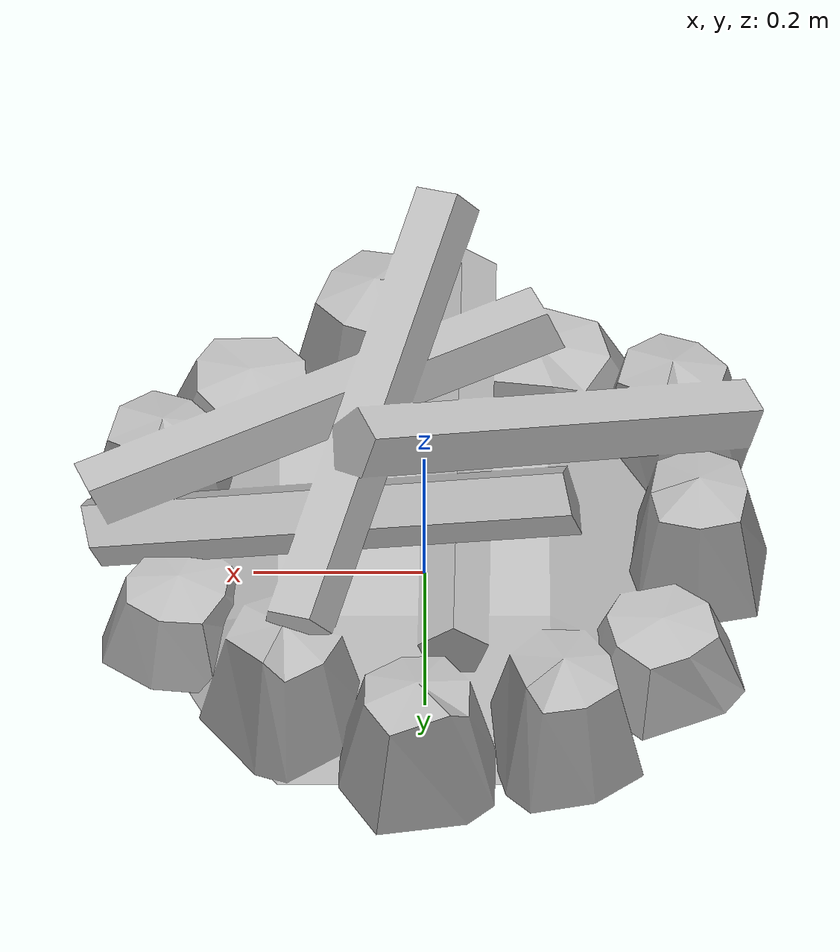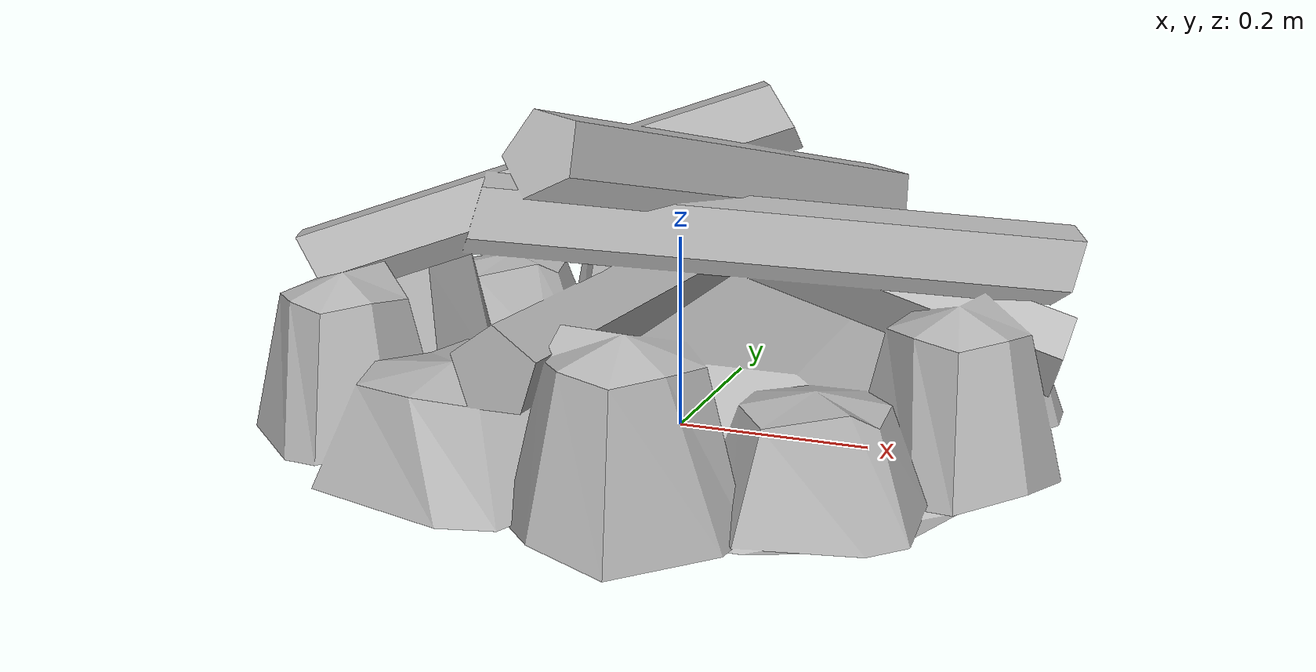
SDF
<sdf version="1.7">
<model name="campfire">
    <static>true</static>
    <link name="link">
        <pose>0 0 0 0 0 0</pose>
        <collision name="collision">
            <geometry>
                <cylinder>
                    <radius>0.35</radius>
                    <length>0.3</length>
                </cylinder>
            </geometry>
        </collision>
        <visual name="visual">
            <cast_shadows>false</cast_shadows>
            <geometry>
                <mesh>
                  <uri>model://campfire/meshes/camp_fire.dae</uri>
                  <scale>0.0025 0.0025 0.0025</scale>
                </mesh>
            </geometry>
        </visual>
    </link>
</model>
</sdf>
